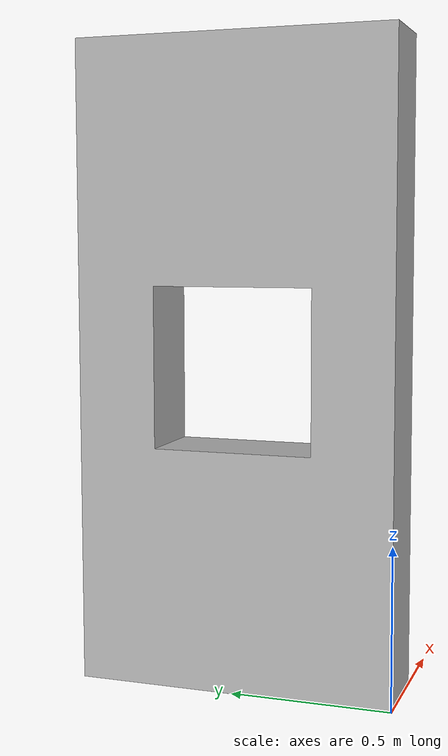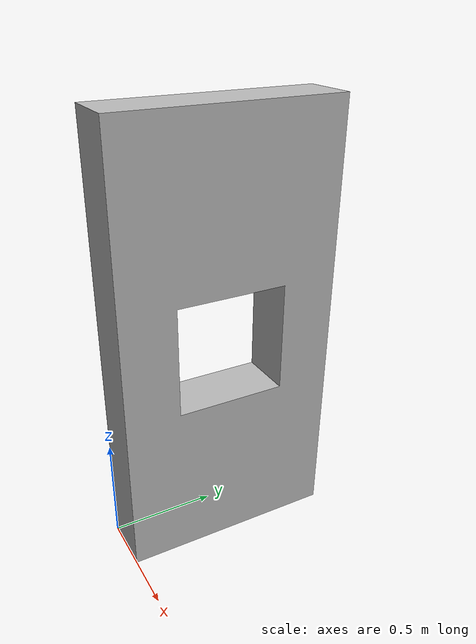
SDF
<?xml version='1.0'?>
<sdf version='1.4'>
  <model name="metal panel">
    <static>true</static>
    <pose>0 0 0 0 0 0</pose>

    <link name="metal panel">
      <visual name="panel">
        <geometry>
          <mesh>
            <uri>model://brick_wall_hole_1/brick_wall_hole_1.dae</uri>
          </mesh>
        </geometry>
      </visual>
      <collision name="panel_collision">
        <geometry>
          <mesh>
            <uri>model://brick_wall_hole_1/brick_wall_hole_1.dae</uri>
          </mesh>
        </geometry>
      </collision>
    </link>

  </model>
</sdf>
